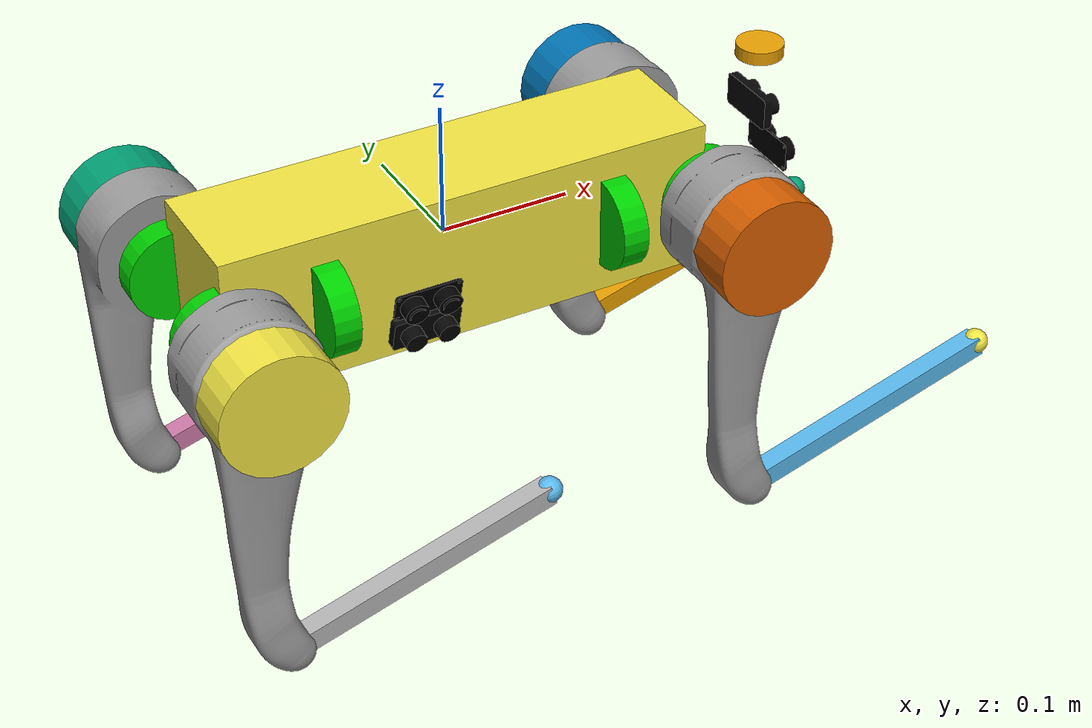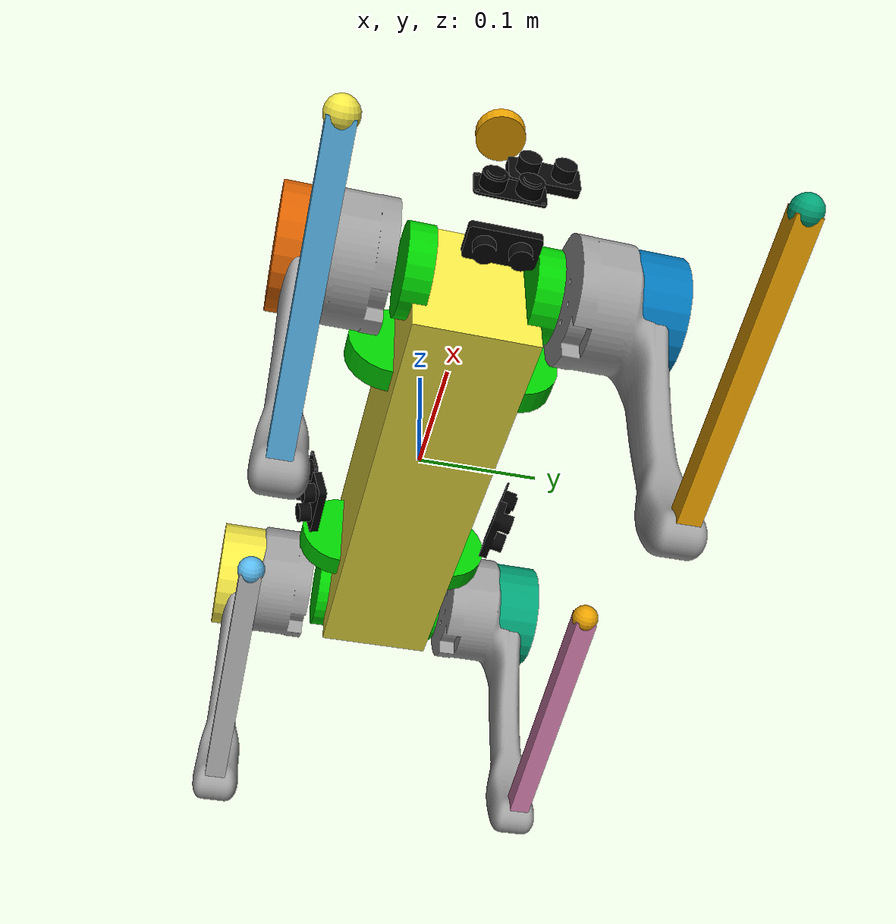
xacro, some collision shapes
<?xml version="1.0"?>

<robot name="robot" xmlns:xacro="http://www.ros.org/wiki/xacro">
    <xacro:arg name="DEBUG" default="false"/>
    <xacro:arg name="use_nav2_links" default="False"/>
    <xacro:arg name="lidar_x_offset" default="0.0525"/>
    <xacro:arg name="lidar_y_offset" default="0.0"/>
    <xacro:arg name="lidar_z_offset" default="0.21"/>

    <xacro:include filename="$(find go1_description)/xacro/const.xacro"/>
    <xacro:include filename="$(find go1_description)/xacro/materials.xacro"/>
    <xacro:include filename="$(find go1_description)/xacro/leg.xacro"/>
    <xacro:include filename="$(find go1_description)/xacro/gazebo.xacro"/>
    <xacro:include filename="$(find go1_description)/xacro/depthCamera.xacro"/>
    <xacro:include filename="$(find go1_description)/xacro/ultraSound.xacro"/>
    <xacro:robot_gazebo_sensors robot_name="$(arg robot_name)"/>

    <joint name='laser_scan' type='fixed'>
        <parent link="base"/>,
        <child link="laser_frame"/>
        <origin xyz="0.263 0.0 0.077" rpy="0 0 0" />
    </joint>

    <link name="laser_frame">
        <inertial>
            <mass value="0.001"/>
            <origin rpy="0 0 0" xyz="0 0 0"/>
            <inertia ixx="0.0001" ixy="0" ixz="0" iyy="0.0001" iyz="0" izz="0.0001"/>
        </inertial>
        <visual>
            <origin rpy="0 0 0" xyz="0 0 0"/>
            <geometry>
                <cylinder length="0.01" radius="0.018" />
            </geometry>
        </visual>
        <collision>
            <origin rpy="0 0 0" xyz="0 0 0"/>
            <geometry>
                <cylinder length="0.01" radius="0.018" />
            </geometry>
        </collision>
    </link>

    <link name="base">
    </link>

    <joint name="floating_base" type="fixed">
        <origin rpy="0 0 0" xyz="0 0 0"/>
        <parent link="base"/>
        <child link="trunk"/>
    </joint>

    <link name="base_footprint" >
    </link>

    <joint name="base_footprint_joint" type="fixed">
        <parent link="base"/>
        <child link="base_footprint"/>
        <origin xyz="0 0 0" rpy="0 0 0"/>
    </joint>
    <link name="trunk">
        <visual>
            <origin rpy="0 0 0" xyz="0 0 0"/>
            <geometry>
                <mesh filename="file://$(find go1_description)/meshes/trunk.dae" scale="1 1 1"/>
            </geometry>
        </visual>
        <collision>
            <origin rpy="0 0 0" xyz="0 0 0"/>
            <geometry>
                <box size="${trunk_length} ${trunk_width} ${trunk_height}"/>
            </geometry>
        </collision>
        <inertial>
            <origin rpy="0 0 0" xyz="${trunk_com_x} ${trunk_com_y} ${trunk_com_z}"/>
            <mass value="${trunk_mass}"/>
            <inertia
                ixx="${trunk_ixx}" ixy="${trunk_ixy}" ixz="${trunk_ixz}"
                iyy="${trunk_iyy}" iyz="${trunk_iyz}"
                izz="${trunk_izz}"/>
        </inertial>
    </link>

    <joint name="imu_joint" type="fixed">
        <parent link="base"/>
        <child link="imu_link"/>
        <origin rpy="0 0 0" xyz="0 0 0"/>
    </joint>

    <link name="imu_link">
        <inertial>
            <mass value="0.001"/>
            <origin rpy="0 0 0" xyz="0 0 0"/>
            <inertia ixx="0.0001" ixy="0" ixz="0" iyy="0.0001" iyz="0" izz="0.0001"/>
        </inertial>
        <visual>
            <origin rpy="0 0 0" xyz="0 0 0"/>
            <geometry>
                <box size="0.001 0.001 0.001"/>
            </geometry>
        </visual>
        <collision>
            <origin rpy="0 0 0" xyz="0 0 0"/>
            <geometry>
                <box size=".001 .001 .001"/>
            </geometry>
        </collision>
    </link>

    <xacro:leg name="FR" mirror="-1" mirror_dae= "False" front_hind="1"  front_hind_dae="True"  />
    <xacro:leg name="FL" mirror="1"  mirror_dae="True"   front_hind="1"  front_hind_dae="True"  />
    <xacro:leg name="RR" mirror="-1" mirror_dae="False"  front_hind="-1" front_hind_dae="False" />
    <xacro:leg name="RL" mirror="1"  mirror_dae="True"   front_hind="-1" front_hind_dae="False" />

    <xacro:depthCamera camID="1" name="face">
        <origin rpy="0 0 0" xyz="0.2785 0.0125 0.0167"/>
    </xacro:depthCamera>

    <xacro:depthCamera camID="2" name="chin">
        <origin rpy="${PI} ${PI/2} 0" xyz="0.2522 0.0125 -0.0436"/>
    </xacro:depthCamera>

    <xacro:depthCamera camID="3" name="left">
        <origin rpy="${PI} 0.2618 ${PI/2}" xyz="-0.066 0.082 -0.0176"/>
    </xacro:depthCamera>

    <xacro:depthCamera camID="4" name="right">
        <origin rpy="${PI} 0.2618 ${-PI/2}" xyz="-0.041 -0.082 -0.0176"/>
    </xacro:depthCamera>

    <xacro:depthCamera camID="5" name="rearDown">
        <origin rpy="${PI} ${PI/2} 0" xyz="-0.0825 0.0125 -0.04365"/>
    </xacro:depthCamera>

    <joint name="camera_laserscan_joint_left" type="fixed">
        <origin rpy="0 0.2618 0" xyz="0 0 0"/>
        <parent link="camera_left"/>
        <child link="camera_laserscan_link_left"/>
    </joint>

    <link name="camera_laserscan_link_left">
    </link>

    <joint name="camera_laserscan_joint_right" type="fixed">
        <origin rpy="0 0.2618 0" xyz="0 0 0"/>
        <parent link="camera_right"/>
        <child link="camera_laserscan_link_right"/>
    </joint>

    <link name="camera_laserscan_link_right">
    </link>

    <xacro:ultraSound name="left">
        <origin rpy="0 0.2618 ${PI/2}" xyz="-0.0535  0.0826 0.00868"/>
    </xacro:ultraSound>

    <xacro:ultraSound name="right">
        <origin rpy="0 0.2618 ${-PI/2}" xyz="-0.0535 -0.0826 0.00868"/>
    </xacro:ultraSound>

    <xacro:ultraSound name="face">
        <origin rpy="0 0 0" xyz="0.2747 0.0 -0.0088"/>
    </xacro:ultraSound>

</robot>

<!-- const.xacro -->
<robot xmlns:xacro="http://www.ros.org/wiki/xacro">

    <!-- Constants for robot dimensions -->
    <xacro:property name="PI" value="3.1415926535897931"/>
    <xacro:property name="stick_mass" value="0.00001"/>

    <!-- simplified collision value -->
    <xacro:property name="trunk_width" value="0.0935"/>
    <xacro:property name="trunk_length" value="0.3762"/>
    <xacro:property name="trunk_height" value="0.114"/>
    <xacro:property name="hip_radius" value="0.046"/>
    <xacro:property name="hip_length" value="0.04"/>
    <xacro:property name="thigh_shoulder_radius" value="0.041"/>
    <xacro:property name="thigh_shoulder_length" value="0.032"/>
    <xacro:property name="thigh_width" value="0.0245"/>
    <xacro:property name="thigh_height" value="0.034"/>
    <xacro:property name="calf_width" value="0.016"/>
    <xacro:property name="calf_height" value="0.016"/>
    <xacro:property name="foot_radius" value="0.02"/>
    <xacro:property name="stick_radius" value="0.01"/>
    <xacro:property name="stick_length" value="0.2"/>

    <!-- kinematic value -->
    <xacro:property name="thigh_offset" value="0.08"/>
    <xacro:property name="thigh_length" value="0.213"/>
    <xacro:property name="calf_length" value="0.213"/>

    <!-- leg offset from trunk center value -->
    <xacro:property name="leg_offset_x" value="0.1881"/>
    <xacro:property name="leg_offset_y" value="0.04675"/>
    <xacro:property name="hip_offset" value="0.08"/>

    <!-- offset of link and rotor locations (left front) -->
    <xacro:property name="hip_offset_x" value="0.1881"/>
    <xacro:property name="hip_offset_y" value="0.04675"/>
    <xacro:property name="hip_offset_z" value="0.0"/>
    <xacro:property name="hip_rotor_offset_x" value="0.11215"/>
    <xacro:property name="hip_rotor_offset_y" value="0.04675"/>
    <xacro:property name="hip_rotor_offset_z" value="0.0"/>

    <xacro:property name="thigh_offset_x" value="0"/>
    <xacro:property name="thigh_offset_y" value="0.08"/>
    <xacro:property name="thigh_offset_z" value="0.0"/>
    <xacro:property name="thigh_rotor_offset_x" value="0.0"/>
    <xacro:property name="thigh_rotor_offset_y" value="-0.00015"/>
    <xacro:property name="thigh_rotor_offset_z" value="0.0"/>

    <xacro:property name="calf_offset_x" value="0.0"/>
    <xacro:property name="calf_offset_y" value="0.0"/>
    <xacro:property name="calf_offset_z" value="-0.213"/>
    <xacro:property name="calf_rotor_offset_x" value="0.0"/>
    <xacro:property name="calf_rotor_offset_y" value="-0.03235"/>
    <xacro:property name="calf_rotor_offset_z" value="0.0"/>

    <!-- joint limits -->
    <xacro:property name="damping" value="0.01"/>
    <xacro:property name="friction" value="0.2"/>
    <xacro:property name="hip_position_max" value="0.863"/>
    <xacro:property name="hip_position_min" value="-0.863"/>
    <xacro:property name="hip_velocity_max" value="30.1"/>
    <xacro:property name="hip_torque_max" value="23.7"/>
    <xacro:property name="thigh_position_max" value="4.501"/>
    <xacro:property name="thigh_position_min" value="-0.686"/>
    <xacro:property name="thigh_velocity_max" value="30.1"/>
    <xacro:property name="thigh_torque_max" value="23.7"/>
    <xacro:property name="calf_position_max" value="-0.888"/>
    <xacro:property name="calf_position_min" value="-2.818"/>
    <xacro:property name="calf_velocity_max" value="20.06"/>
    <xacro:property name="calf_torque_max" value="35.55"/>

    <!-- dynamics inertial value        total 12.84kg -->
    <!-- trunk -->
    <xacro:property name="trunk_mass" value="5.204"/>
    <xacro:property name="trunk_com_x" value="0.0223"/>
    <xacro:property name="trunk_com_y" value="0.002"/>
    <xacro:property name="trunk_com_z" value="-0.0005"/>
    <xacro:property name="trunk_ixx" value="0.0168128557"/>
    <xacro:property name="trunk_ixy" value="-0.0002296769"/>
    <xacro:property name="trunk_ixz" value="-0.0002945293"/>
    <xacro:property name="trunk_iyy" value="0.063009565"/>
    <xacro:property name="trunk_iyz" value="-0.0000418731"/>
    <xacro:property name="trunk_izz" value="0.0716547275"/>

    <!-- hip (left front) -->
    <xacro:property name="hip_mass" value="0.591"/>
    <xacro:property name="hip_com_x" value="-0.005657"/>
    <xacro:property name="hip_com_y" value="-0.008752"/>
    <xacro:property name="hip_com_z" value="-0.000102"/>
    <xacro:property name="hip_ixx" value="0.000334008405"/>
    <xacro:property name="hip_ixy" value="-0.000010826066"/>
    <xacro:property name="hip_ixz" value="0.000001290732"/>
    <xacro:property name="hip_iyy" value="0.000619101213"/>
    <xacro:property name="hip_iyz" value="0.000001643194"/>
    <xacro:property name="hip_izz" value="0.00040057614"/>

    <xacro:property name="hip_rotor_mass" value="0.089"/>
    <xacro:property name="hip_rotor_com_x" value="0.0"/>
    <xacro:property name="hip_rotor_com_y" value="0.0"/>
    <xacro:property name="hip_rotor_com_z" value="0.0"/>
    <xacro:property name="hip_rotor_ixx" value="0.000111842"/>
    <xacro:property name="hip_rotor_ixy" value="0.0"/>
    <xacro:property name="hip_rotor_ixz" value="0.0"/>
    <xacro:property name="hip_rotor_iyy" value="0.000059647"/>
    <xacro:property name="hip_rotor_iyz" value="0.0"/>
    <xacro:property name="hip_rotor_izz" value="0.000059647"/>

    <!-- thigh -->
    <xacro:property name="thigh_mass" value="0.92"/>
    <xacro:property name="thigh_com_x" value="-0.003342"/>
    <xacro:property name="thigh_com_y" value="-0.018054"/>
    <xacro:property name="thigh_com_z" value="-0.033451"/>
    <xacro:property name="thigh_ixx" value="0.004431760472"/>
    <xacro:property name="thigh_ixy" value="0.000057496807"/>
    <xacro:property name="thigh_ixz" value="-0.000218457134"/>
    <xacro:property name="thigh_iyy" value="0.004485671726"/>
    <xacro:property name="thigh_iyz" value="0.000572001265"/>
    <xacro:property name="thigh_izz" value="0.000740309489"/>

    <xacro:property name="thigh_rotor_mass" value="0.089"/>
    <xacro:property name="thigh_rotor_com_x" value="0.0"/>
    <xacro:property name="thigh_rotor_com_y" value="0.0"/>
    <xacro:property name="thigh_rotor_com_z" value="0.0"/>
    <xacro:property name="thigh_rotor_ixx" value="0.000059647"/>
    <xacro:property name="thigh_rotor_ixy" value="0.0"/>
    <xacro:property name="thigh_rotor_ixz" value="0.0"/>
    <xacro:property name="thigh_rotor_iyy" value="0.000111842"/>
    <xacro:property name="thigh_rotor_iyz" value="0.0"/>
    <xacro:property name="thigh_rotor_izz" value="0.000059647"/>

    <!-- calf -->
    <xacro:property name="calf_mass" value="0.135862"/>
    <xacro:property name="calf_com_x" value="0.006197"/>
    <xacro:property name="calf_com_y" value="0.001408"/>
    <xacro:property name="calf_com_z" value="-0.116695"/>
    <xacro:property name="calf_ixx" value="0.001088793059"/>
    <xacro:property name="calf_ixy" value="-0.000000255679"/>
    <xacro:property name="calf_ixz" value="0.000007117814"/>
    <xacro:property name="calf_iyy" value="0.001100428748"/>
    <xacro:property name="calf_iyz" value="0.000002077264"/>
    <xacro:property name="calf_izz" value="0.000024787446"/>

    <xacro:property name="calf_rotor_mass" value="0.089"/>
    <xacro:property name="calf_rotor_com_x" value="0.0"/>
    <xacro:property name="calf_rotor_com_y" value="0.0"/>
    <xacro:property name="calf_rotor_com_z" value="0.0"/>
    <xacro:property name="calf_rotor_ixx" value="0.000059647"/>
    <xacro:property name="calf_rotor_ixy" value="0.0"/>
    <xacro:property name="calf_rotor_ixz" value="0.0"/>
    <xacro:property name="calf_rotor_iyy" value="0.000111842"/>
    <xacro:property name="calf_rotor_iyz" value="0.0"/>
    <xacro:property name="calf_rotor_izz" value="0.000059647"/>

    <!-- foot -->
    <xacro:property name="foot_mass" value="0.06"/>

</robot>

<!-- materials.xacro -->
<robot>

    <material name="black">
        <color rgba="0.0 0.0 0.0 1.0" />
    </material>

    <material name="blue">
        <color rgba="0.0 0.0 0.8 1.0" />
    </material>

    <material name="green">
        <color rgba="0.0 0.8 0.0 1.0" />
    </material>

    <material name="grey">
        <color rgba="0.2 0.2 0.2 1.0" />
    </material>

    <material name="silver">
        <color rgba="${233/255} ${233/255} ${216/255} 1.0" />
    </material>

    <material name="orange">
        <color rgba="${255/255} ${108/255} ${10/255} 1.0" />
    </material>

    <material name="brown">
        <color rgba="${222/255} ${207/255} ${195/255} 1.0" />
    </material>

    <material name="red">
        <color rgba="0.8 0.0 0.0 1.0" />
    </material>

    <material name="white">
        <color rgba="1.0 1.0 1.0 1.0" />
    </material>

</robot>

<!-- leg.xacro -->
<robot xmlns:xacro="http://www.ros.org/wiki/xacro">

    <xacro:include filename="$(find go1_description)/xacro/transmission.xacro"/>

    <xacro:macro name="leg" params="name mirror mirror_dae front_hind front_hind_dae">

        <joint name="${name}_hip_joint" type="revolute">
            <xacro:if value="${(mirror_dae == False) and (front_hind_dae == True)}">
                <origin rpy="0 0 0" xyz="${leg_offset_x} ${-leg_offset_y} 0"/>
            </xacro:if>
            <xacro:if value="${(mirror_dae == True) and (front_hind_dae == True)}">
                <origin rpy="0 0 0" xyz="${leg_offset_x} ${leg_offset_y} 0"/>
            </xacro:if>
            <xacro:if value="${(mirror_dae == False) and (front_hind_dae == False)}">
                <origin rpy="0 0 0" xyz="${-leg_offset_x} ${-leg_offset_y} 0"/>
            </xacro:if>
            <xacro:if value="${(mirror_dae == True) and (front_hind_dae == False)}">
                <origin rpy="0 0 0" xyz="${-leg_offset_x} ${leg_offset_y} 0"/>
            </xacro:if>
            <parent link="trunk"/>
            <child link="${name}_hip"/>
            <axis xyz="1 0 0"/>
            <dynamics damping="${damping}" friction="${friction}"/>
            <xacro:if value="${(mirror_dae == True)}">
                <limit effort="${hip_torque_max}" velocity="${hip_velocity_max}" lower="${hip_position_min}" upper="${hip_position_max}"/>
            </xacro:if>
            <xacro:if value="${(mirror_dae == False)}">
                <limit effort="${hip_torque_max}" velocity="${hip_velocity_max}" lower="${-hip_position_max}" upper="${-hip_position_min}"/>
            </xacro:if>
        </joint>

        <joint name="${name}_hip_rotor_joint" type="fixed">
            <xacro:if value="${(mirror_dae == False) and (front_hind_dae == True)}">
                <origin rpy="0 0 0" xyz="${hip_rotor_offset_x} ${-hip_rotor_offset_y} 0"/>
            </xacro:if>
            <xacro:if value="${(mirror_dae == True) and (front_hind_dae == True)}">
                <origin rpy="0 0 0" xyz="${hip_rotor_offset_x} ${hip_rotor_offset_y} 0"/>
            </xacro:if>
            <xacro:if value="${(mirror_dae == False) and (front_hind_dae == False)}">
                <origin rpy="0 0 0" xyz="${-hip_rotor_offset_x} ${-hip_rotor_offset_y} 0"/>
            </xacro:if>
            <xacro:if value="${(mirror_dae == True) and (front_hind_dae == False)}">
                <origin rpy="0 0 0" xyz="${-hip_rotor_offset_x} ${hip_rotor_offset_y} 0"/>
            </xacro:if>
            <parent link="trunk"/>
            <child link="${name}_hip_rotor"/>
        </joint>

        <link name="${name}_hip">
            <visual>
                <xacro:if value="${(mirror_dae == True) and (front_hind_dae == True)}">
                    <origin rpy="0 0 0" xyz="0 0 0"/>
                </xacro:if>
                <xacro:if value="${(mirror_dae == False) and (front_hind_dae == True)}">
                    <origin rpy="${PI} 0 0" xyz="0 0 0"/>
                </xacro:if>
                <xacro:if value="${(mirror_dae == True) and (front_hind_dae == False)}">
                    <origin rpy="0 ${PI} 0" xyz="0 0 0"/>
                </xacro:if>
                <xacro:if value="${(mirror_dae == False) and (front_hind_dae == False)}">
                    <origin rpy="${PI} ${PI} 0" xyz="0 0 0"/>
                </xacro:if>
                <geometry>
                    <mesh filename="file://$(find go1_description)/meshes/hip.dae" scale="1 1 1"/>
                </geometry>
            </visual>
            <collision>
                <origin rpy="${PI/2.0} 0 0" xyz="0 ${hip_offset*mirror} 0"/>
                <geometry>
                    <cylinder length="${hip_length}" radius="${hip_radius}"/>
                </geometry>
            </collision>
            <inertial>
                <origin rpy="0 0 0" xyz="${hip_com_x*front_hind} ${hip_com_y*mirror} ${hip_com_z}"/>
                <mass value="${hip_mass}"/>
                <inertia
                    ixx="${hip_ixx}" ixy="${hip_ixy*mirror*front_hind}" ixz="${hip_ixz*front_hind}"
                    iyy="${hip_iyy}" iyz="${hip_iyz*mirror}"
                    izz="${hip_izz}"/>
            </inertial>
        </link>

        <link name="${name}_hip_rotor">
            <visual>
                <origin rpy="0 ${PI/2.0} 0" xyz="0 0 0"/>
                <geometry>
                    <cylinder length="0.02" radius="0.035"/>
                </geometry>
                <material name="green"/>
            </visual>
            <collision>
                <origin rpy="0 ${PI/2.0} 0" xyz="0 0 0"/>
                <geometry>
                    <cylinder length="0.02" radius="0.035"/>
                </geometry>
            </collision>
            <inertial>
                <origin rpy="0 0 0" xyz="${hip_rotor_com_x} ${hip_rotor_com_y} ${hip_rotor_com_z}"/>
                <mass value="${hip_rotor_mass}"/>
                <inertia
                    ixx="${hip_rotor_ixx}" ixy="${hip_rotor_ixy}" ixz="${hip_rotor_ixz}"
                    iyy="${hip_rotor_iyy}" iyz="${hip_rotor_iyz}"
                    izz="${hip_rotor_izz}"/>
            </inertial>
        </link>

        <joint name="${name}_thigh_joint" type="revolute">
            <origin rpy="0 0 0" xyz="0 ${thigh_offset*mirror} 0"/>
            <parent link="${name}_hip"/>
            <child link="${name}_thigh"/>
            <axis xyz="0 1 0"/>
            <dynamics damping="${damping}" friction="${friction}"/>
            <limit effort="${thigh_torque_max}" velocity="${thigh_velocity_max}" lower="${thigh_position_min}" upper="${thigh_position_max}"/>
        </joint>

        <joint name="${name}_thigh_rotor_joint" type="fixed">
            <origin rpy="0 0 0" xyz="${thigh_rotor_offset_x} ${thigh_rotor_offset_y*mirror} 0"/>
            <parent link="${name}_hip"/>
            <child link="${name}_thigh_rotor"/>
        </joint>

        <link name="${name}_thigh">
            <visual>
                <origin rpy="0 0 0" xyz="0 0 0"/>
                <geometry>
                    <xacro:if value="${mirror_dae == True}">
                        <mesh filename="file://$(find go1_description)/meshes/thigh.dae" scale="1 1 1"/>
                    </xacro:if>
                    <xacro:if value="${mirror_dae == False}">
                        <mesh filename="file://$(find go1_description)/meshes/thigh_mirror.dae" scale="1 1 1"/>
                    </xacro:if>
                </geometry>
            </visual>
            <collision>
                <origin rpy="0 ${PI/2.0} 0" xyz="0 0 ${-thigh_length/2.0}"/>
                <geometry>
                    <box size="${thigh_length} ${thigh_width} ${thigh_height}"/>
                </geometry>
            </collision>
            <inertial>
                <origin rpy="0 0 0" xyz="${thigh_com_x} ${thigh_com_y*mirror} ${thigh_com_z}"/>
                <mass value="${thigh_mass}"/>
                <inertia
                    ixx="${thigh_ixx}" ixy="${thigh_ixy*mirror}" ixz="${thigh_ixz}"
                    iyy="${thigh_iyy}" iyz="${thigh_iyz*mirror}"
                    izz="${thigh_izz}"/>
            </inertial>
        </link>

        <link name="${name}_thigh_rotor">
            <visual>
                <origin rpy="${PI/2.0} 0 0" xyz="0 0 0"/>
                <geometry>
                    <cylinder length="0.02" radius="0.035"/>
                </geometry>
                <material name="green"/>
            </visual>
            <collision>
                <origin rpy="${PI/2.0} 0 0" xyz="0 0 0"/>
                <geometry>
                    <cylinder length="0.02" radius="0.035"/>
                </geometry>
            </collision>
            <inertial>
                <origin rpy="0 0 0" xyz="${thigh_rotor_com_x} ${thigh_rotor_com_y} ${thigh_rotor_com_z}"/>
                <mass value="${thigh_rotor_mass}"/>
                <inertia
                    ixx="${thigh_rotor_ixx}" ixy="${thigh_rotor_ixy}" ixz="${thigh_rotor_ixz}"
                    iyy="${thigh_rotor_iyy}" iyz="${thigh_rotor_iyz}"
                    izz="${thigh_rotor_izz}"/>
            </inertial>
        </link>

        <joint name="${name}_calf_joint" type="revolute">
            <origin rpy="0 0 0" xyz="0 0 ${-thigh_length}"/>
            <parent link="${name}_thigh"/>
            <child link="${name}_calf"/>
            <axis xyz="0 1 0"/>
            <dynamics damping="${damping}" friction="${friction}"/>
            <limit effort="${calf_torque_max}" velocity="${calf_velocity_max}" lower="${calf_position_min}" upper="${calf_position_max}"/>
        </joint>

        <joint name="${name}_calf_rotor_joint" type="fixed">
            <origin rpy="0 0 0" xyz="${calf_rotor_offset_x} ${calf_rotor_offset_y*mirror} 0"/>
            <parent link="${name}_thigh"/>
            <child link="${name}_calf_rotor"/>
        </joint>

        <link name="${name}_calf">
            <visual>
                <origin rpy="0 0 0" xyz="0 0 0"/>
                <geometry>
                    <mesh filename="file://$(find go1_description)/meshes/calf.dae" scale="1 1 1"/>
                </geometry>
            </visual>
            <collision>
                <origin rpy="0 ${PI/2.0} 0" xyz="0 0 ${-calf_length/2.0}"/>
                <geometry>
                    <box size="${calf_length} ${calf_width} ${calf_height}"/>
                </geometry>
            </collision>
            <inertial>
                <origin rpy="0 0 0" xyz="${calf_com_x} ${calf_com_y} ${calf_com_z}"/>
                <mass value="${calf_mass}"/>
                <inertia
                    ixx="${calf_ixx}" ixy="${calf_ixy}" ixz="${calf_ixz}"
                    iyy="${calf_iyy}" iyz="${calf_iyz}"
                    izz="${calf_izz}"/>
            </inertial>
        </link>

        <link name="${name}_calf_rotor">
            <visual>
                <origin rpy="${PI/2.0} 0 0" xyz="0 0 0"/>
                <geometry>
                    <cylinder length="0.02" radius="0.035"/>
                </geometry>
                <material name="green"/>
            </visual>
            <collision>
                <origin rpy="${PI/2.0} 0 0" xyz="0 0 0"/>
                <geometry>
                    <cylinder length="0.02" radius="0.035"/>
                </geometry>
            </collision>
            <inertial>
                <origin rpy="0 0 0" xyz="${calf_rotor_com_x} ${calf_rotor_com_y} ${calf_rotor_com_z}"/>
                <mass value="${calf_rotor_mass}"/>
                <inertia
                    ixx="${calf_rotor_ixx}" ixy="${calf_rotor_ixy}" ixz="${calf_rotor_ixz}"
                    iyy="${calf_rotor_iyy}" iyz="${calf_rotor_iyz}"
                    izz="${calf_rotor_izz}"/>
            </inertial>
        </link>

        <joint name="${name}_foot_fixed" type="fixed">
            <origin rpy="0 0 0" xyz="0 0 ${-(calf_length)}"/>
            <parent link="${name}_calf"/>
            <child link="${name}_foot"/>
        </joint>

        <link name="${name}_foot">
            <visual>
                <origin rpy="0 0 0" xyz="0 0 0"/>
                <geometry>
                    <sphere radius="${foot_radius-0.01}"/>
                </geometry>
            </visual>
            <collision>
                <origin rpy="0 0 0" xyz="0 0 0"/>
                <geometry>
                    <sphere radius="${foot_radius}"/>
                </geometry>
            </collision>
            <inertial>
                <mass value="${foot_mass}"/>
                <inertia
                    ixx="${(2*foot_mass)/5.0*(foot_radius*foot_radius)}" ixy="0.0" ixz="0.0"
                    iyy="${(2*foot_mass)/5.0*(foot_radius*foot_radius)}" iyz="0.0"
                    izz="${(2*foot_mass)/5.0*(foot_radius*foot_radius)}"/>
            </inertial>
        </link>

        <xacro:leg_transmission name="${name}"/>
    </xacro:macro>
</robot>

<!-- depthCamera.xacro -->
<robot xmlns:xacro="http://www.ros.org/wiki/xacro">
    <xacro:macro name="depthCamera" params="camID name *origin">
        <joint name="camera_joint_${name}" type="fixed">
            <xacro:insert_block name="origin"/>
            <parent link="trunk"/>
            <child link="camera_${name}"/>
        </joint>

        <link name="camera_${name}">
            <collision>
            <origin xyz="0 0 0" rpy="0 0 0"/>
            <geometry>
                <box size=".001 .001 .001"/>
            </geometry>
            </collision>

            <visual>
            <origin xyz="0 0 0" rpy="0 0 0"/>
            <geometry>
                <mesh filename="file://$(find go1_description)/meshes/depthCamera.dae" scale="1 1 1"/>
            </geometry>
            </visual>

            <inertial>
            <mass value="1e-5" />
            <origin xyz="0 0 0" rpy="0 0 0"/>
            <inertia ixx="1e-6" ixy="0" ixz="0" iyy="1e-6" iyz="0" izz="1e-6" />
            </inertial>
        </link>

        <joint name="camera_optical_joint_${name}" type="fixed">
            <origin xyz="0 0 0" rpy="${-pi/2} 0 ${-pi/2}"/>
            <parent link="camera_${name}"/>
            <child link="camera_optical_${name}"/>
        </joint>

        <link name="camera_optical_${name}">
        </link>

    </xacro:macro>
</robot>

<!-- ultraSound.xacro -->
<robot xmlns:xacro="http://www.ros.org/wiki/xacro">
    <xacro:macro name="ultraSound" params="name *origin">
        <joint name="ultraSound_joint_${name}" type="fixed">
            <xacro:insert_block name="origin" />
            <parent link="trunk" />
            <child link="ultraSound_${name}" />
        </joint>
        <link name="ultraSound_${name}">
            <collision>
                <origin xyz="0 0 0" rpy="0 0 0" />
                <geometry>
                    <box size=".001 .001 .001" />
                </geometry>
            </collision>

            <visual>
                <origin xyz="0 0 0" rpy="0 0 0" />
                <geometry>
                    <mesh filename="package://go1_description/meshes/ultraSound.dae" scale="1 1 1" />
                </geometry>
                <material name="black" />
            </visual>

            <inertial>
                <mass value="1e-5" />
                <origin xyz="0 0 0" rpy="0 0 0" />
                <inertia ixx="1e-6" ixy="0" ixz="0" iyy="1e-6" iyz="0" izz="1e-6" />
            </inertial>
        </link>
    </xacro:macro>
</robot>
